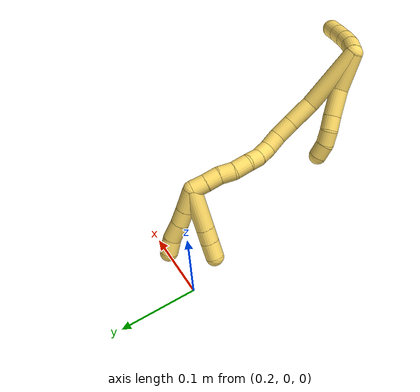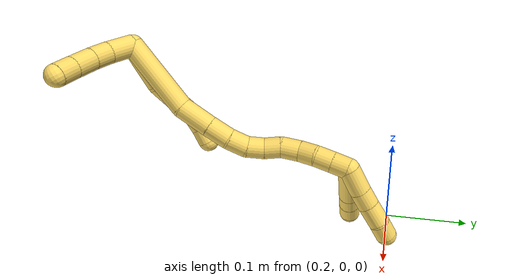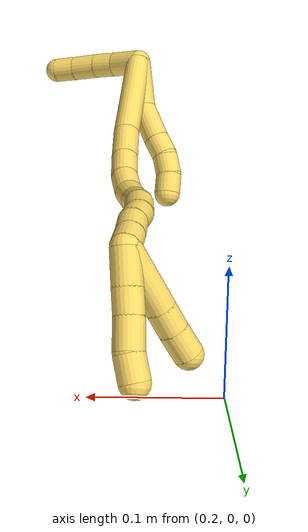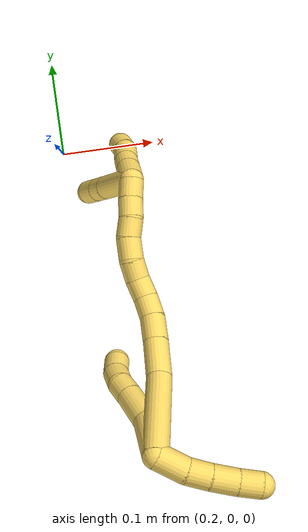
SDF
<sdf version="1.7">
 <world name="default">
  <model name="5">
   <static>0</static>
   <link name="5">
    <collision name="collision-cylinder-e_1_2_8">
     <pose>-0.003467 0.000911 -0.025566 -3.10598 -0.134718 2.62545</pose>
     <geometry><cylinder><radius>0.0125</radius><length>0.051632</length></cylinder></geometry>
     <surface>
      <friction><ode><mu>1.16</mu><mu2>1.16</mu2><slip1>0</slip1><slip2>0</slip2></ode></friction>
      <contact><ode><kp>1e+06</kp><kd>1</kd><max_vel>0</max_vel><min_depth>0.001</min_depth></ode></contact>
     </surface>
    </collision>
    <visual name="visual-cylinder-e_1_2_8">
     <pose>-0.003467 0.000911 -0.025566 -3.10598 -0.134718 2.62545</pose>
     <geometry><cylinder><radius>0.0125</radius><length>0.051632</length></cylinder></geometry>
     <material><ambient>1 0.858824 0.4 1</ambient></material>
    </visual>
    <collision name="collision-cylinder-e_2_8_9">
     <pose>-0.012638 0.007024 -0.068678 -2.85337 -0.302069 1.61838</pose>
     <geometry><cylinder><radius>0.0125</radius><length>0.038339</length></cylinder></geometry>
     <surface>
      <friction><ode><mu>1.16</mu><mu2>1.16</mu2><slip1>0</slip1><slip2>0</slip2></ode></friction>
      <contact><ode><kp>1e+06</kp><kd>1</kd><max_vel>0</max_vel><min_depth>0.001</min_depth></ode></contact>
     </surface>
    </collision>
    <visual name="visual-cylinder-e_2_8_9">
     <pose>-0.012638 0.007024 -0.068678 -2.85337 -0.302069 1.61838</pose>
     <geometry><cylinder><radius>0.0125</radius><length>0.038339</length></cylinder></geometry>
     <material><ambient>1 0.858824 0.4 1</ambient></material>
    </visual>
    <collision name="collision-cylinder-e_3_9_10">
     <pose>-0.021785 0.015217 -0.095126 -2.81743 -0.351518 1.65327</pose>
     <geometry><cylinder><radius>0.0125</radius><length>0.020005</length></cylinder></geometry>
     <surface>
      <friction><ode><mu>1.16</mu><mu2>1.16</mu2><slip1>0</slip1><slip2>0</slip2></ode></friction>
      <contact><ode><kp>1e+06</kp><kd>1</kd><max_vel>0</max_vel><min_depth>0.001</min_depth></ode></contact>
     </surface>
    </collision>
    <visual name="visual-cylinder-e_3_9_10">
     <pose>-0.021785 0.015217 -0.095126 -2.81743 -0.351518 1.65327</pose>
     <geometry><cylinder><radius>0.0125</radius><length>0.020005</length></cylinder></geometry>
     <material><ambient>1 0.858824 0.4 1</ambient></material>
    </visual>
    <collision name="collision-cylinder-e_4_10_11">
     <pose>-0.027492 0.018708 -0.113763 -3.09029 -0.228113 2.70096</pose>
     <geometry><cylinder><radius>0.0125</radius><length>0.020015</length></cylinder></geometry>
     <surface>
      <friction><ode><mu>1.16</mu><mu2>1.16</mu2><slip1>0</slip1><slip2>0</slip2></ode></friction>
      <contact><ode><kp>1e+06</kp><kd>1</kd><max_vel>0</max_vel><min_depth>0.001</min_depth></ode></contact>
     </surface>
    </collision>
    <visual name="visual-cylinder-e_4_10_11">
     <pose>-0.027492 0.018708 -0.113763 -3.09029 -0.228113 2.70096</pose>
     <geometry><cylinder><radius>0.0125</radius><length>0.020015</length></cylinder></geometry>
     <material><ambient>1 0.858824 0.4 1</ambient></material>
    </visual>
    <collision name="collision-cylinder-e_5_11_6">
     <pose>-0.029317 0.018958 -0.133491 3.1166 0.04376 2.10376</pose>
     <geometry><cylinder><radius>0.0125</radius><length>0.02001</length></cylinder></geometry>
     <surface>
      <friction><ode><mu>1.16</mu><mu2>1.16</mu2><slip1>0</slip1><slip2>0</slip2></ode></friction>
      <contact><ode><kp>1e+06</kp><kd>1</kd><max_vel>0</max_vel><min_depth>0.001</min_depth></ode></contact>
     </surface>
    </collision>
    <visual name="visual-cylinder-e_5_11_6">
     <pose>-0.029317 0.018958 -0.133491 3.1166 0.04376 2.10376</pose>
     <geometry><cylinder><radius>0.0125</radius><length>0.02001</length></cylinder></geometry>
     <material><ambient>1 0.858824 0.4 1</ambient></material>
    </visual>
    <collision name="collision-cylinder-e_1_2_12">
     <pose>0.00745 -0.013025 0.002427 1.38661 0.512233 0.428496</pose>
     <geometry><cylinder><radius>0.0125</radius><length>0.030399</length></cylinder></geometry>
     <surface>
      <friction><ode><mu>1.16</mu><mu2>1.16</mu2><slip1>0</slip1><slip2>0</slip2></ode></friction>
      <contact><ode><kp>1e+06</kp><kd>1</kd><max_vel>0</max_vel><min_depth>0.001</min_depth></ode></contact>
     </surface>
    </collision>
    <visual name="visual-cylinder-e_1_2_12">
     <pose>0.00745 -0.013025 0.002427 1.38661 0.512233 0.428496</pose>
     <geometry><cylinder><radius>0.0125</radius><length>0.030399</length></cylinder></geometry>
     <material><ambient>1 0.858824 0.4 1</ambient></material>
    </visual>
    <collision name="collision-cylinder-e_2_12_13">
     <pose>0.022264 -0.034574 0.005706 1.47107 0.710047 0.647377</pose>
     <geometry><cylinder><radius>0.0125</radius><length>0.022594</length></cylinder></geometry>
     <surface>
      <friction><ode><mu>1.16</mu><mu2>1.16</mu2><slip1>0</slip1><slip2>0</slip2></ode></friction>
      <contact><ode><kp>1e+06</kp><kd>1</kd><max_vel>0</max_vel><min_depth>0.001</min_depth></ode></contact>
     </surface>
    </collision>
    <visual name="visual-cylinder-e_2_12_13">
     <pose>0.022264 -0.034574 0.005706 1.47107 0.710047 0.647377</pose>
     <geometry><cylinder><radius>0.0125</radius><length>0.022594</length></cylinder></geometry>
     <material><ambient>1 0.858824 0.4 1</ambient></material>
    </visual>
    <collision name="collision-cylinder-e_3_13_14">
     <pose>0.038216 -0.052368 0.006799 1.54494 0.74705 0.729645</pose>
     <geometry><cylinder><radius>0.0125</radius><length>0.02528</length></cylinder></geometry>
     <surface>
      <friction><ode><mu>1.16</mu><mu2>1.16</mu2><slip1>0</slip1><slip2>0</slip2></ode></friction>
      <contact><ode><kp>1e+06</kp><kd>1</kd><max_vel>0</max_vel><min_depth>0.001</min_depth></ode></contact>
     </surface>
    </collision>
    <visual name="visual-cylinder-e_3_13_14">
     <pose>0.038216 -0.052368 0.006799 1.54494 0.74705 0.729645</pose>
     <geometry><cylinder><radius>0.0125</radius><length>0.02528</length></cylinder></geometry>
     <material><ambient>1 0.858824 0.4 1</ambient></material>
    </visual>
    <collision name="collision-cylinder-e_4_14_5">
     <pose>0.054687 -0.069114 0.007069 1.56673 0.811931 0.808983</pose>
     <geometry><cylinder><radius>0.0125</radius><length>0.021727</length></cylinder></geometry>
     <surface>
      <friction><ode><mu>1.16</mu><mu2>1.16</mu2><slip1>0</slip1><slip2>0</slip2></ode></friction>
      <contact><ode><kp>1e+06</kp><kd>1</kd><max_vel>0</max_vel><min_depth>0.001</min_depth></ode></contact>
     </surface>
    </collision>
    <visual name="visual-cylinder-e_4_14_5">
     <pose>0.054687 -0.069114 0.007069 1.56673 0.811931 0.808983</pose>
     <geometry><cylinder><radius>0.0125</radius><length>0.021727</length></cylinder></geometry>
     <material><ambient>1 0.858824 0.4 1</ambient></material>
    </visual>
    <collision name="collision-cylinder-e_1_2_15">
     <pose>0.008281 0.007005 -0.043237 -2.98097 0.186859 -1.72229</pose>
     <geometry><cylinder><radius>0.0125</radius><length>0.089154</length></cylinder></geometry>
     <surface>
      <friction><ode><mu>1.16</mu><mu2>1.16</mu2><slip1>0</slip1><slip2>0</slip2></ode></friction>
      <contact><ode><kp>1e+06</kp><kd>1</kd><max_vel>0</max_vel><min_depth>0.001</min_depth></ode></contact>
     </surface>
    </collision>
    <visual name="visual-cylinder-e_1_2_15">
     <pose>0.008281 0.007005 -0.043237 -2.98097 0.186859 -1.72229</pose>
     <geometry><cylinder><radius>0.0125</radius><length>0.089154</length></cylinder></geometry>
     <material><ambient>1 0.858824 0.4 1</ambient></material>
    </visual>
    <collision name="collision-cylinder-e_2_15_16">
     <pose>0.020668 0.022268 -0.103013 -2.67852 0.218543 -0.87106</pose>
     <geometry><cylinder><radius>0.0125</radius><length>0.037872</length></cylinder></geometry>
     <surface>
      <friction><ode><mu>1.16</mu><mu2>1.16</mu2><slip1>0</slip1><slip2>0</slip2></ode></friction>
      <contact><ode><kp>1e+06</kp><kd>1</kd><max_vel>0</max_vel><min_depth>0.001</min_depth></ode></contact>
     </surface>
    </collision>
    <visual name="visual-cylinder-e_2_15_16">
     <pose>0.020668 0.022268 -0.103013 -2.67852 0.218543 -0.87106</pose>
     <geometry><cylinder><radius>0.0125</radius><length>0.037872</length></cylinder></geometry>
     <material><ambient>1 0.858824 0.4 1</ambient></material>
    </visual>
    <collision name="collision-cylinder-e_3_16_17">
     <pose>0.027294 0.0367 -0.130943 -2.64483 0.192107 -0.726125</pose>
     <geometry><cylinder><radius>0.0125</radius><length>0.026399</length></cylinder></geometry>
     <surface>
      <friction><ode><mu>1.16</mu><mu2>1.16</mu2><slip1>0</slip1><slip2>0</slip2></ode></friction>
      <contact><ode><kp>1e+06</kp><kd>1</kd><max_vel>0</max_vel><min_depth>0.001</min_depth></ode></contact>
     </surface>
    </collision>
    <visual name="visual-cylinder-e_3_16_17">
     <pose>0.027294 0.0367 -0.130943 -2.64483 0.192107 -0.726125</pose>
     <geometry><cylinder><radius>0.0125</radius><length>0.026399</length></cylinder></geometry>
     <material><ambient>1 0.858824 0.4 1</ambient></material>
    </visual>
    <collision name="collision-cylinder-e_4_17_18">
     <pose>0.030466 0.049497 -0.151383 -2.50985 0.058066 -0.177257</pose>
     <geometry><cylinder><radius>0.0125</radius><length>0.022465</length></cylinder></geometry>
     <surface>
      <friction><ode><mu>1.16</mu><mu2>1.16</mu2><slip1>0</slip1><slip2>0</slip2></ode></friction>
      <contact><ode><kp>1e+06</kp><kd>1</kd><max_vel>0</max_vel><min_depth>0.001</min_depth></ode></contact>
     </surface>
    </collision>
    <visual name="visual-cylinder-e_4_17_18">
     <pose>0.030466 0.049497 -0.151383 -2.50985 0.058066 -0.177257</pose>
     <geometry><cylinder><radius>0.0125</radius><length>0.022465</length></cylinder></geometry>
     <material><ambient>1 0.858824 0.4 1</ambient></material>
    </visual>
    <collision name="collision-cylinder-e_5_18_19">
     <pose>0.031889 0.06471 -0.166306 -2.17054 0.074025 -0.140125</pose>
     <geometry><cylinder><radius>0.0125</radius><length>0.020869</length></cylinder></geometry>
     <surface>
      <friction><ode><mu>1.16</mu><mu2>1.16</mu2><slip1>0</slip1><slip2>0</slip2></ode></friction>
      <contact><ode><kp>1e+06</kp><kd>1</kd><max_vel>0</max_vel><min_depth>0.001</min_depth></ode></contact>
     </surface>
    </collision>
    <visual name="visual-cylinder-e_5_18_19">
     <pose>0.031889 0.06471 -0.166306 -2.17054 0.074025 -0.140125</pose>
     <geometry><cylinder><radius>0.0125</radius><length>0.020869</length></cylinder></geometry>
     <material><ambient>1 0.858824 0.4 1</ambient></material>
    </visual>
    <collision name="collision-cylinder-e_6_19_20">
     <pose>0.035065 0.082332 -0.17598 -1.96906 0.240589 -0.36006</pose>
     <geometry><cylinder><radius>0.0125</radius><length>0.020181</length></cylinder></geometry>
     <surface>
      <friction><ode><mu>1.16</mu><mu2>1.16</mu2><slip1>0</slip1><slip2>0</slip2></ode></friction>
      <contact><ode><kp>1e+06</kp><kd>1</kd><max_vel>0</max_vel><min_depth>0.001</min_depth></ode></contact>
     </surface>
    </collision>
    <visual name="visual-cylinder-e_6_19_20">
     <pose>0.035065 0.082332 -0.17598 -1.96906 0.240589 -0.36006</pose>
     <geometry><cylinder><radius>0.0125</radius><length>0.020181</length></cylinder></geometry>
     <material><ambient>1 0.858824 0.4 1</ambient></material>
    </visual>
    <collision name="collision-cylinder-e_7_20_21">
     <pose>0.041212 0.099667 -0.186522 -2.2529 0.336582 -0.685529</pose>
     <geometry><cylinder><radius>0.0125</radius><length>0.022662</length></cylinder></geometry>
     <surface>
      <friction><ode><mu>1.16</mu><mu2>1.16</mu2><slip1>0</slip1><slip2>0</slip2></ode></friction>
      <contact><ode><kp>1e+06</kp><kd>1</kd><max_vel>0</max_vel><min_depth>0.001</min_depth></ode></contact>
     </surface>
    </collision>
    <visual name="visual-cylinder-e_7_20_21">
     <pose>0.041212 0.099667 -0.186522 -2.2529 0.336582 -0.685529</pose>
     <geometry><cylinder><radius>0.0125</radius><length>0.022662</length></cylinder></geometry>
     <material><ambient>1 0.858824 0.4 1</ambient></material>
    </visual>
    <collision name="collision-cylinder-e_8_21_22">
     <pose>0.050722 0.114208 -0.198832 -2.29931 0.603835 -1.21508</pose>
     <geometry><cylinder><radius>0.0125</radius><length>0.020316</length></cylinder></geometry>
     <surface>
      <friction><ode><mu>1.16</mu><mu2>1.16</mu2><slip1>0</slip1><slip2>0</slip2></ode></friction>
      <contact><ode><kp>1e+06</kp><kd>1</kd><max_vel>0</max_vel><min_depth>0.001</min_depth></ode></contact>
     </surface>
    </collision>
    <visual name="visual-cylinder-e_8_21_22">
     <pose>0.050722 0.114208 -0.198832 -2.29931 0.603835 -1.21508</pose>
     <geometry><cylinder><radius>0.0125</radius><length>0.020316</length></cylinder></geometry>
     <material><ambient>1 0.858824 0.4 1</ambient></material>
    </visual>
    <collision name="collision-cylinder-e_9_22_23">
     <pose>0.060421 0.126611 -0.211258 -2.40958 0.403029 -0.979399</pose>
     <geometry><cylinder><radius>0.0125</radius><length>0.020051</length></cylinder></geometry>
     <surface>
      <friction><ode><mu>1.16</mu><mu2>1.16</mu2><slip1>0</slip1><slip2>0</slip2></ode></friction>
      <contact><ode><kp>1e+06</kp><kd>1</kd><max_vel>0</max_vel><min_depth>0.001</min_depth></ode></contact>
     </surface>
    </collision>
    <visual name="visual-cylinder-e_9_22_23">
     <pose>0.060421 0.126611 -0.211258 -2.40958 0.403029 -0.979399</pose>
     <geometry><cylinder><radius>0.0125</radius><length>0.020051</length></cylinder></geometry>
     <material><ambient>1 0.858824 0.4 1</ambient></material>
    </visual>
    <collision name="collision-cylinder-e_10_23_1">
     <pose>0.068872 0.138711 -0.224801 -2.4154 0.468042 -1.1207</pose>
     <geometry><cylinder><radius>0.0125</radius><length>0.020032</length></cylinder></geometry>
     <surface>
      <friction><ode><mu>1.16</mu><mu2>1.16</mu2><slip1>0</slip1><slip2>0</slip2></ode></friction>
      <contact><ode><kp>1e+06</kp><kd>1</kd><max_vel>0</max_vel><min_depth>0.001</min_depth></ode></contact>
     </surface>
    </collision>
    <visual name="visual-cylinder-e_10_23_1">
     <pose>0.068872 0.138711 -0.224801 -2.4154 0.468042 -1.1207</pose>
     <geometry><cylinder><radius>0.0125</radius><length>0.020032</length></cylinder></geometry>
     <material><ambient>1 0.858824 0.4 1</ambient></material>
    </visual>
    <collision name="collision-cylinder-e_1_1_24">
     <pose>0.0719 0.144914 -0.246855 -3.12419 -0.096665 2.78551</pose>
     <geometry><cylinder><radius>0.0125</radius><length>0.030889</length></cylinder></geometry>
     <surface>
      <friction><ode><mu>1.16</mu><mu2>1.16</mu2><slip1>0</slip1><slip2>0</slip2></ode></friction>
      <contact><ode><kp>1e+06</kp><kd>1</kd><max_vel>0</max_vel><min_depth>0.001</min_depth></ode></contact>
     </surface>
    </collision>
    <visual name="visual-cylinder-e_1_1_24">
     <pose>0.0719 0.144914 -0.246855 -3.12419 -0.096665 2.78551</pose>
     <geometry><cylinder><radius>0.0125</radius><length>0.030889</length></cylinder></geometry>
     <material><ambient>1 0.858824 0.4 1</ambient></material>
    </visual>
    <collision name="collision-cylinder-e_2_24_25">
     <pose>0.069506 0.145782 -0.272756 -3.08466 -0.085434 1.96624</pose>
     <geometry><cylinder><radius>0.0125</radius><length>0.021174</length></cylinder></geometry>
     <surface>
      <friction><ode><mu>1.16</mu><mu2>1.16</mu2><slip1>0</slip1><slip2>0</slip2></ode></friction>
      <contact><ode><kp>1e+06</kp><kd>1</kd><max_vel>0</max_vel><min_depth>0.001</min_depth></ode></contact>
     </surface>
    </collision>
    <visual name="visual-cylinder-e_2_24_25">
     <pose>0.069506 0.145782 -0.272756 -3.08466 -0.085434 1.96624</pose>
     <geometry><cylinder><radius>0.0125</radius><length>0.021174</length></cylinder></geometry>
     <material><ambient>1 0.858824 0.4 1</ambient></material>
    </visual>
    <collision name="collision-cylinder-e_3_25_26">
     <pose>0.068604 0.147327 -0.296431 -3.06981 0.000171 -0.004766</pose>
     <geometry><cylinder><radius>0.0125</radius><length>0.026355</length></cylinder></geometry>
     <surface>
      <friction><ode><mu>1.16</mu><mu2>1.16</mu2><slip1>0</slip1><slip2>0</slip2></ode></friction>
      <contact><ode><kp>1e+06</kp><kd>1</kd><max_vel>0</max_vel><min_depth>0.001</min_depth></ode></contact>
     </surface>
    </collision>
    <visual name="visual-cylinder-e_3_25_26">
     <pose>0.068604 0.147327 -0.296431 -3.06981 0.000171 -0.004766</pose>
     <geometry><cylinder><radius>0.0125</radius><length>0.026355</length></cylinder></geometry>
     <material><ambient>1 0.858824 0.4 1</ambient></material>
    </visual>
    <collision name="collision-cylinder-e_4_26_4">
     <pose>0.066095 0.14902 -0.320043 -3.0702 -0.234954 2.55396</pose>
     <geometry><cylinder><radius>0.0125</radius><length>0.021582</length></cylinder></geometry>
     <surface>
      <friction><ode><mu>1.16</mu><mu2>1.16</mu2><slip1>0</slip1><slip2>0</slip2></ode></friction>
      <contact><ode><kp>1e+06</kp><kd>1</kd><max_vel>0</max_vel><min_depth>0.001</min_depth></ode></contact>
     </surface>
    </collision>
    <visual name="visual-cylinder-e_4_26_4">
     <pose>0.066095 0.14902 -0.320043 -3.0702 -0.234954 2.55396</pose>
     <geometry><cylinder><radius>0.0125</radius><length>0.021582</length></cylinder></geometry>
     <material><ambient>1 0.858824 0.4 1</ambient></material>
    </visual>
    <collision name="collision-cylinder-e_1_1_27">
     <pose>0.055114 0.140377 -0.252601 2.94212 -0.703525 -2.60925</pose>
     <geometry><cylinder><radius>0.0125</radius><length>0.056503</length></cylinder></geometry>
     <surface>
      <friction><ode><mu>1.16</mu><mu2>1.16</mu2><slip1>0</slip1><slip2>0</slip2></ode></friction>
      <contact><ode><kp>1e+06</kp><kd>1</kd><max_vel>0</max_vel><min_depth>0.001</min_depth></ode></contact>
     </surface>
    </collision>
    <visual name="visual-cylinder-e_1_1_27">
     <pose>0.055114 0.140377 -0.252601 2.94212 -0.703525 -2.60925</pose>
     <geometry><cylinder><radius>0.0125</radius><length>0.056503</length></cylinder></geometry>
     <material><ambient>1 0.858824 0.4 1</ambient></material>
    </visual>
    <collision name="collision-cylinder-e_2_27_28">
     <pose>0.030348 0.134625 -0.281282 2.94794 -0.69984 -2.62134</pose>
     <geometry><cylinder><radius>0.0125</radius><length>0.020154</length></cylinder></geometry>
     <surface>
      <friction><ode><mu>1.16</mu><mu2>1.16</mu2><slip1>0</slip1><slip2>0</slip2></ode></friction>
      <contact><ode><kp>1e+06</kp><kd>1</kd><max_vel>0</max_vel><min_depth>0.001</min_depth></ode></contact>
     </surface>
    </collision>
    <visual name="visual-cylinder-e_2_27_28">
     <pose>0.030348 0.134625 -0.281282 2.94794 -0.69984 -2.62134</pose>
     <geometry><cylinder><radius>0.0125</radius><length>0.020154</length></cylinder></geometry>
     <material><ambient>1 0.858824 0.4 1</ambient></material>
    </visual>
    <collision name="collision-cylinder-e_3_28_3">
     <pose>0.016034 0.131701 -0.297387 2.97446 -0.734572 -2.71286</pose>
     <geometry><cylinder><radius>0.0125</radius><length>0.023343</length></cylinder></geometry>
     <surface>
      <friction><ode><mu>1.16</mu><mu2>1.16</mu2><slip1>0</slip1><slip2>0</slip2></ode></friction>
      <contact><ode><kp>1e+06</kp><kd>1</kd><max_vel>0</max_vel><min_depth>0.001</min_depth></ode></contact>
     </surface>
    </collision>
    <visual name="visual-cylinder-e_3_28_3">
     <pose>0.016034 0.131701 -0.297387 2.97446 -0.734572 -2.71286</pose>
     <geometry><cylinder><radius>0.0125</radius><length>0.023343</length></cylinder></geometry>
     <material><ambient>1 0.858824 0.4 1</ambient></material>
    </visual>
    <collision name="collision-sphere-3">
     <pose>0.008211 0.13026 -0.305928 0 -0 0</pose>
     <geometry><sphere><radius>0.0125</radius></sphere></geometry>
     <surface>
      <friction><ode><mu>1.16</mu><mu2>1.16</mu2><slip1>0</slip1><slip2>0</slip2></ode></friction>
      <contact><ode><kp>1e+06</kp><kd>1</kd><max_vel>0</max_vel><min_depth>0.001</min_depth></ode></contact>
     </surface>
    </collision>
    <visual name="visual-sphere-3">
     <pose>0.008211 0.13026 -0.305928 0 -0 0</pose>
     <geometry><sphere><radius>0.0125</radius></sphere></geometry>
     <material><ambient>1 0.858824 0.4 1</ambient></material>
    </visual>
    <collision name="collision-sphere-28">
     <pose>0.023857 0.133142 -0.288846 0 -0 0</pose>
     <geometry><sphere><radius>0.0125</radius></sphere></geometry>
     <surface>
      <friction><ode><mu>1.16</mu><mu2>1.16</mu2><slip1>0</slip1><slip2>0</slip2></ode></friction>
      <contact><ode><kp>1e+06</kp><kd>1</kd><max_vel>0</max_vel><min_depth>0.001</min_depth></ode></contact>
     </surface>
    </collision>
    <visual name="visual-sphere-28">
     <pose>0.023857 0.133142 -0.288846 0 -0 0</pose>
     <geometry><sphere><radius>0.0125</radius></sphere></geometry>
     <material><ambient>1 0.858824 0.4 1</ambient></material>
    </visual>
    <collision name="collision-sphere-27">
     <pose>0.036838 0.136108 -0.273717 0 -0 0</pose>
     <geometry><sphere><radius>0.0125</radius></sphere></geometry>
     <surface>
      <friction><ode><mu>1.16</mu><mu2>1.16</mu2><slip1>0</slip1><slip2>0</slip2></ode></friction>
      <contact><ode><kp>1e+06</kp><kd>1</kd><max_vel>0</max_vel><min_depth>0.001</min_depth></ode></contact>
     </surface>
    </collision>
    <visual name="visual-sphere-27">
     <pose>0.036838 0.136108 -0.273717 0 -0 0</pose>
     <geometry><sphere><radius>0.0125</radius></sphere></geometry>
     <material><ambient>1 0.858824 0.4 1</ambient></material>
    </visual>
    <collision name="collision-sphere-4">
     <pose>0.063582 0.149769 -0.33051 0 -0 0</pose>
     <geometry><sphere><radius>0.0125</radius></sphere></geometry>
     <surface>
      <friction><ode><mu>1.16</mu><mu2>1.16</mu2><slip1>0</slip1><slip2>0</slip2></ode></friction>
      <contact><ode><kp>1e+06</kp><kd>1</kd><max_vel>0</max_vel><min_depth>0.001</min_depth></ode></contact>
     </surface>
    </collision>
    <visual name="visual-sphere-4">
     <pose>0.063582 0.149769 -0.33051 0 -0 0</pose>
     <geometry><sphere><radius>0.0125</radius></sphere></geometry>
     <material><ambient>1 0.858824 0.4 1</ambient></material>
    </visual>
    <collision name="collision-sphere-26">
     <pose>0.068607 0.148272 -0.309575 0 -0 0</pose>
     <geometry><sphere><radius>0.0125</radius></sphere></geometry>
     <surface>
      <friction><ode><mu>1.16</mu><mu2>1.16</mu2><slip1>0</slip1><slip2>0</slip2></ode></friction>
      <contact><ode><kp>1e+06</kp><kd>1</kd><max_vel>0</max_vel><min_depth>0.001</min_depth></ode></contact>
     </surface>
    </collision>
    <visual name="visual-sphere-26">
     <pose>0.068607 0.148272 -0.309575 0 -0 0</pose>
     <geometry><sphere><radius>0.0125</radius></sphere></geometry>
     <material><ambient>1 0.858824 0.4 1</ambient></material>
    </visual>
    <collision name="collision-sphere-25">
     <pose>0.068602 0.146382 -0.283288 0 -0 0</pose>
     <geometry><sphere><radius>0.0125</radius></sphere></geometry>
     <surface>
      <friction><ode><mu>1.16</mu><mu2>1.16</mu2><slip1>0</slip1><slip2>0</slip2></ode></friction>
      <contact><ode><kp>1e+06</kp><kd>1</kd><max_vel>0</max_vel><min_depth>0.001</min_depth></ode></contact>
     </surface>
    </collision>
    <visual name="visual-sphere-25">
     <pose>0.068602 0.146382 -0.283288 0 -0 0</pose>
     <geometry><sphere><radius>0.0125</radius></sphere></geometry>
     <material><ambient>1 0.858824 0.4 1</ambient></material>
    </visual>
    <collision name="collision-sphere-24">
     <pose>0.070409 0.145181 -0.262225 0 -0 0</pose>
     <geometry><sphere><radius>0.0125</radius></sphere></geometry>
     <surface>
      <friction><ode><mu>1.16</mu><mu2>1.16</mu2><slip1>0</slip1><slip2>0</slip2></ode></friction>
      <contact><ode><kp>1e+06</kp><kd>1</kd><max_vel>0</max_vel><min_depth>0.001</min_depth></ode></contact>
     </surface>
    </collision>
    <visual name="visual-sphere-24">
     <pose>0.070409 0.145181 -0.262225 0 -0 0</pose>
     <geometry><sphere><radius>0.0125</radius></sphere></geometry>
     <material><ambient>1 0.858824 0.4 1</ambient></material>
    </visual>
    <collision name="collision-sphere-1">
     <pose>0.07339 0.144646 -0.231485 0 -0 0</pose>
     <geometry><sphere><radius>0.0125</radius></sphere></geometry>
     <surface>
      <friction><ode><mu>1.16</mu><mu2>1.16</mu2><slip1>0</slip1><slip2>0</slip2></ode></friction>
      <contact><ode><kp>1e+06</kp><kd>1</kd><max_vel>0</max_vel><min_depth>0.001</min_depth></ode></contact>
     </surface>
    </collision>
    <visual name="visual-sphere-1">
     <pose>0.07339 0.144646 -0.231485 0 -0 0</pose>
     <geometry><sphere><radius>0.0125</radius></sphere></geometry>
     <material><ambient>1 0.858824 0.4 1</ambient></material>
    </visual>
    <collision name="collision-sphere-23">
     <pose>0.064353 0.132775 -0.218118 0 -0 0</pose>
     <geometry><sphere><radius>0.0125</radius></sphere></geometry>
     <surface>
      <friction><ode><mu>1.16</mu><mu2>1.16</mu2><slip1>0</slip1><slip2>0</slip2></ode></friction>
      <contact><ode><kp>1e+06</kp><kd>1</kd><max_vel>0</max_vel><min_depth>0.001</min_depth></ode></contact>
     </surface>
    </collision>
    <visual name="visual-sphere-23">
     <pose>0.064353 0.132775 -0.218118 0 -0 0</pose>
     <geometry><sphere><radius>0.0125</radius></sphere></geometry>
     <material><ambient>1 0.858824 0.4 1</ambient></material>
    </visual>
    <collision name="collision-sphere-22">
     <pose>0.056489 0.120448 -0.204398 0 -0 0</pose>
     <geometry><sphere><radius>0.0125</radius></sphere></geometry>
     <surface>
      <friction><ode><mu>1.16</mu><mu2>1.16</mu2><slip1>0</slip1><slip2>0</slip2></ode></friction>
      <contact><ode><kp>1e+06</kp><kd>1</kd><max_vel>0</max_vel><min_depth>0.001</min_depth></ode></contact>
     </surface>
    </collision>
    <visual name="visual-sphere-22">
     <pose>0.056489 0.120448 -0.204398 0 -0 0</pose>
     <geometry><sphere><radius>0.0125</radius></sphere></geometry>
     <material><ambient>1 0.858824 0.4 1</ambient></material>
    </visual>
    <collision name="collision-sphere-21">
     <pose>0.044954 0.107969 -0.193265 0 -0 0</pose>
     <geometry><sphere><radius>0.0125</radius></sphere></geometry>
     <surface>
      <friction><ode><mu>1.16</mu><mu2>1.16</mu2><slip1>0</slip1><slip2>0</slip2></ode></friction>
      <contact><ode><kp>1e+06</kp><kd>1</kd><max_vel>0</max_vel><min_depth>0.001</min_depth></ode></contact>
     </surface>
    </collision>
    <visual name="visual-sphere-21">
     <pose>0.044954 0.107969 -0.193265 0 -0 0</pose>
     <geometry><sphere><radius>0.0125</radius></sphere></geometry>
     <material><ambient>1 0.858824 0.4 1</ambient></material>
    </visual>
    <collision name="collision-sphere-6">
     <pose>-0.028879 0.018708 -0.143483 0 -0 0</pose>
     <geometry><sphere><radius>0.0125</radius></sphere></geometry>
     <surface>
      <friction><ode><mu>1.16</mu><mu2>1.16</mu2><slip1>0</slip1><slip2>0</slip2></ode></friction>
      <contact><ode><kp>1e+06</kp><kd>1</kd><max_vel>0</max_vel><min_depth>0.001</min_depth></ode></contact>
     </surface>
    </collision>
    <visual name="visual-sphere-6">
     <pose>-0.028879 0.018708 -0.143483 0 -0 0</pose>
     <geometry><sphere><radius>0.0125</radius></sphere></geometry>
     <material><ambient>1 0.858824 0.4 1</ambient></material>
    </visual>
    <collision name="collision-sphere-11">
     <pose>-0.029755 0.019208 -0.123499 0 -0 0</pose>
     <geometry><sphere><radius>0.0125</radius></sphere></geometry>
     <surface>
      <friction><ode><mu>1.16</mu><mu2>1.16</mu2><slip1>0</slip1><slip2>0</slip2></ode></friction>
      <contact><ode><kp>1e+06</kp><kd>1</kd><max_vel>0</max_vel><min_depth>0.001</min_depth></ode></contact>
     </surface>
    </collision>
    <visual name="visual-sphere-11">
     <pose>-0.029755 0.019208 -0.123499 0 -0 0</pose>
     <geometry><sphere><radius>0.0125</radius></sphere></geometry>
     <material><ambient>1 0.858824 0.4 1</ambient></material>
    </visual>
    <collision name="collision-sphere-10">
     <pose>-0.025229 0.018208 -0.104028 0 -0 0</pose>
     <geometry><sphere><radius>0.0125</radius></sphere></geometry>
     <surface>
      <friction><ode><mu>1.16</mu><mu2>1.16</mu2><slip1>0</slip1><slip2>0</slip2></ode></friction>
      <contact><ode><kp>1e+06</kp><kd>1</kd><max_vel>0</max_vel><min_depth>0.001</min_depth></ode></contact>
     </surface>
    </collision>
    <visual name="visual-sphere-10">
     <pose>-0.025229 0.018208 -0.104028 0 -0 0</pose>
     <geometry><sphere><radius>0.0125</radius></sphere></geometry>
     <material><ambient>1 0.858824 0.4 1</ambient></material>
    </visual>
    <collision name="collision-sphere-9">
     <pose>-0.01834 0.012226 -0.086225 0 -0 0</pose>
     <geometry><sphere><radius>0.0125</radius></sphere></geometry>
     <surface>
      <friction><ode><mu>1.16</mu><mu2>1.16</mu2><slip1>0</slip1><slip2>0</slip2></ode></friction>
      <contact><ode><kp>1e+06</kp><kd>1</kd><max_vel>0</max_vel><min_depth>0.001</min_depth></ode></contact>
     </surface>
    </collision>
    <visual name="visual-sphere-9">
     <pose>-0.01834 0.012226 -0.086225 0 -0 0</pose>
     <geometry><sphere><radius>0.0125</radius></sphere></geometry>
     <material><ambient>1 0.858824 0.4 1</ambient></material>
    </visual>
    <collision name="collision-sphere-2">
     <geometry><sphere><radius>0.0125</radius></sphere></geometry>
     <surface>
      <friction><ode><mu>1.16</mu><mu2>1.16</mu2><slip1>0</slip1><slip2>0</slip2></ode></friction>
      <contact><ode><kp>1e+06</kp><kd>1</kd><max_vel>0</max_vel><min_depth>0.001</min_depth></ode></contact>
     </surface>
    </collision>
    <visual name="visual-sphere-2">
     <geometry><sphere><radius>0.0125</radius></sphere></geometry>
     <material><ambient>1 0.858824 0.4 1</ambient></material>
    </visual>
    <collision name="collision-sphere-19">
     <pose>0.032661 0.073299 -0.172179 0 -0 0</pose>
     <geometry><sphere><radius>0.0125</radius></sphere></geometry>
     <surface>
      <friction><ode><mu>1.16</mu><mu2>1.16</mu2><slip1>0</slip1><slip2>0</slip2></ode></friction>
      <contact><ode><kp>1e+06</kp><kd>1</kd><max_vel>0</max_vel><min_depth>0.001</min_depth></ode></contact>
     </surface>
    </collision>
    <visual name="visual-sphere-19">
     <pose>0.032661 0.073299 -0.172179 0 -0 0</pose>
     <geometry><sphere><radius>0.0125</radius></sphere></geometry>
     <material><ambient>1 0.858824 0.4 1</ambient></material>
    </visual>
    <collision name="collision-sphere-8">
     <pose>-0.006935 0.001822 -0.051131 0 -0 0</pose>
     <geometry><sphere><radius>0.0125</radius></sphere></geometry>
     <surface>
      <friction><ode><mu>1.16</mu><mu2>1.16</mu2><slip1>0</slip1><slip2>0</slip2></ode></friction>
      <contact><ode><kp>1e+06</kp><kd>1</kd><max_vel>0</max_vel><min_depth>0.001</min_depth></ode></contact>
     </surface>
    </collision>
    <visual name="visual-sphere-8">
     <pose>-0.006935 0.001822 -0.051131 0 -0 0</pose>
     <geometry><sphere><radius>0.0125</radius></sphere></geometry>
     <material><ambient>1 0.858824 0.4 1</ambient></material>
    </visual>
    <collision name="collision-sphere-12">
     <pose>0.014899 -0.026049 0.004853 0 -0 0</pose>
     <geometry><sphere><radius>0.0125</radius></sphere></geometry>
     <surface>
      <friction><ode><mu>1.16</mu><mu2>1.16</mu2><slip1>0</slip1><slip2>0</slip2></ode></friction>
      <contact><ode><kp>1e+06</kp><kd>1</kd><max_vel>0</max_vel><min_depth>0.001</min_depth></ode></contact>
     </surface>
    </collision>
    <visual name="visual-sphere-12">
     <pose>0.014899 -0.026049 0.004853 0 -0 0</pose>
     <geometry><sphere><radius>0.0125</radius></sphere></geometry>
     <material><ambient>1 0.858824 0.4 1</ambient></material>
    </visual>
    <collision name="collision-sphere-13">
     <pose>0.029628 -0.043098 0.006559 0 -0 0</pose>
     <geometry><sphere><radius>0.0125</radius></sphere></geometry>
     <surface>
      <friction><ode><mu>1.16</mu><mu2>1.16</mu2><slip1>0</slip1><slip2>0</slip2></ode></friction>
      <contact><ode><kp>1e+06</kp><kd>1</kd><max_vel>0</max_vel><min_depth>0.001</min_depth></ode></contact>
     </surface>
    </collision>
    <visual name="visual-sphere-13">
     <pose>0.029628 -0.043098 0.006559 0 -0 0</pose>
     <geometry><sphere><radius>0.0125</radius></sphere></geometry>
     <material><ambient>1 0.858824 0.4 1</ambient></material>
    </visual>
    <collision name="collision-sphere-14">
     <pose>0.046805 -0.061639 0.007038 0 -0 0</pose>
     <geometry><sphere><radius>0.0125</radius></sphere></geometry>
     <surface>
      <friction><ode><mu>1.16</mu><mu2>1.16</mu2><slip1>0</slip1><slip2>0</slip2></ode></friction>
      <contact><ode><kp>1e+06</kp><kd>1</kd><max_vel>0</max_vel><min_depth>0.001</min_depth></ode></contact>
     </surface>
    </collision>
    <visual name="visual-sphere-14">
     <pose>0.046805 -0.061639 0.007038 0 -0 0</pose>
     <geometry><sphere><radius>0.0125</radius></sphere></geometry>
     <material><ambient>1 0.858824 0.4 1</ambient></material>
    </visual>
    <collision name="collision-sphere-5">
     <pose>0.06257 -0.07659 0.007099 0 -0 0</pose>
     <geometry><sphere><radius>0.0125</radius></sphere></geometry>
     <surface>
      <friction><ode><mu>1.16</mu><mu2>1.16</mu2><slip1>0</slip1><slip2>0</slip2></ode></friction>
      <contact><ode><kp>1e+06</kp><kd>1</kd><max_vel>0</max_vel><min_depth>0.001</min_depth></ode></contact>
     </surface>
    </collision>
    <visual name="visual-sphere-5">
     <pose>0.06257 -0.07659 0.007099 0 -0 0</pose>
     <geometry><sphere><radius>0.0125</radius></sphere></geometry>
     <material><ambient>1 0.858824 0.4 1</ambient></material>
    </visual>
    <collision name="collision-sphere-15">
     <pose>0.016562 0.01401 -0.086474 0 -0 0</pose>
     <geometry><sphere><radius>0.0125</radius></sphere></geometry>
     <surface>
      <friction><ode><mu>1.16</mu><mu2>1.16</mu2><slip1>0</slip1><slip2>0</slip2></ode></friction>
      <contact><ode><kp>1e+06</kp><kd>1</kd><max_vel>0</max_vel><min_depth>0.001</min_depth></ode></contact>
     </surface>
    </collision>
    <visual name="visual-sphere-15">
     <pose>0.016562 0.01401 -0.086474 0 -0 0</pose>
     <geometry><sphere><radius>0.0125</radius></sphere></geometry>
     <material><ambient>1 0.858824 0.4 1</ambient></material>
    </visual>
    <collision name="collision-sphere-16">
     <pose>0.024773 0.030525 -0.119552 0 -0 0</pose>
     <geometry><sphere><radius>0.0125</radius></sphere></geometry>
     <surface>
      <friction><ode><mu>1.16</mu><mu2>1.16</mu2><slip1>0</slip1><slip2>0</slip2></ode></friction>
      <contact><ode><kp>1e+06</kp><kd>1</kd><max_vel>0</max_vel><min_depth>0.001</min_depth></ode></contact>
     </surface>
    </collision>
    <visual name="visual-sphere-16">
     <pose>0.024773 0.030525 -0.119552 0 -0 0</pose>
     <geometry><sphere><radius>0.0125</radius></sphere></geometry>
     <material><ambient>1 0.858824 0.4 1</ambient></material>
    </visual>
    <collision name="collision-sphere-17">
     <pose>0.029814 0.042875 -0.142334 0 -0 0</pose>
     <geometry><sphere><radius>0.0125</radius></sphere></geometry>
     <surface>
      <friction><ode><mu>1.16</mu><mu2>1.16</mu2><slip1>0</slip1><slip2>0</slip2></ode></friction>
      <contact><ode><kp>1e+06</kp><kd>1</kd><max_vel>0</max_vel><min_depth>0.001</min_depth></ode></contact>
     </surface>
    </collision>
    <visual name="visual-sphere-17">
     <pose>0.029814 0.042875 -0.142334 0 -0 0</pose>
     <geometry><sphere><radius>0.0125</radius></sphere></geometry>
     <material><ambient>1 0.858824 0.4 1</ambient></material>
    </visual>
    <collision name="collision-sphere-18">
     <pose>0.031118 0.05612 -0.160432 0 -0 0</pose>
     <geometry><sphere><radius>0.0125</radius></sphere></geometry>
     <surface>
      <friction><ode><mu>1.16</mu><mu2>1.16</mu2><slip1>0</slip1><slip2>0</slip2></ode></friction>
      <contact><ode><kp>1e+06</kp><kd>1</kd><max_vel>0</max_vel><min_depth>0.001</min_depth></ode></contact>
     </surface>
    </collision>
    <visual name="visual-sphere-18">
     <pose>0.031118 0.05612 -0.160432 0 -0 0</pose>
     <geometry><sphere><radius>0.0125</radius></sphere></geometry>
     <material><ambient>1 0.858824 0.4 1</ambient></material>
    </visual>
    <collision name="collision-sphere-20">
     <pose>0.03747 0.091365 -0.17978 0 -0 0</pose>
     <geometry><sphere><radius>0.0125</radius></sphere></geometry>
     <surface>
      <friction><ode><mu>1.16</mu><mu2>1.16</mu2><slip1>0</slip1><slip2>0</slip2></ode></friction>
      <contact><ode><kp>1e+06</kp><kd>1</kd><max_vel>0</max_vel><min_depth>0.001</min_depth></ode></contact>
     </surface>
    </collision>
    <visual name="visual-sphere-20">
     <pose>0.03747 0.091365 -0.17978 0 -0 0</pose>
     <geometry><sphere><radius>0.0125</radius></sphere></geometry>
     <material><ambient>1 0.858824 0.4 1</ambient></material>
    </visual>
    <inertial>
     <pose>0.027372 0.05628 -0.138561 0 -0 0</pose>
     <mass>0.75</mass>
     <inertia><ixx>-7.5e-05</ixx><ixy>0</ixy><ixz>0</ixz><iyy>-7e-06</iyy><iyz>0</iyz><izz>-6e-05</izz></inertia>
    </inertial>
   </link>
   <pose>0.262254 -0.29915 0.22548 0.440631 -0.240558 0.394882</pose>
  </model>
 </world>
</sdf>
